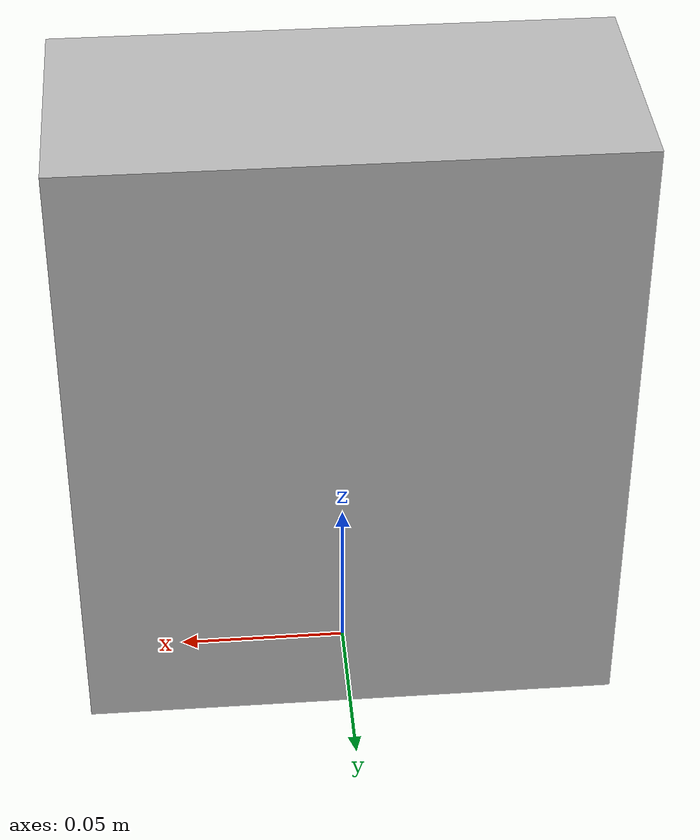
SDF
<?xml version="1.0"?>
<sdf version="1.4">
  <model name="reemc_textured_object">
    <static>0</static>
    <link name="link">
      <collision name="colision1">
        <pose>0 0 0.1 0 0 0</pose>
        <geometry>
          <mesh>
            <uri>file://models/reemc_textured_object/meshes/mesh.dae</uri>
            <scale> 1 1 1 </scale>
          </mesh>
        </geometry>
        <surface>
          <bounce />
          <friction>
            <ode />
          </friction>
          <contact>
            <ode />
          </contact>
        </surface>
      </collision>

      <visual name="visual1">
        <pose>0 0 0.1 0 0 0</pose>
        <geometry>
          <mesh>
            <uri>file://models/reemc_textured_object/meshes/mesh.dae</uri>
            <scale> 1 1 1 </scale>
          </mesh>
        </geometry>
      </visual>

      <velocity_decay>
        <linear>0.000000</linear>
        <angular>0.000000</angular>
      </velocity_decay>
      <self_collide>0</self_collide>
      <kinematic>0</kinematic>
      <gravity>1</gravity>
    </link>
  </model>
</sdf>
